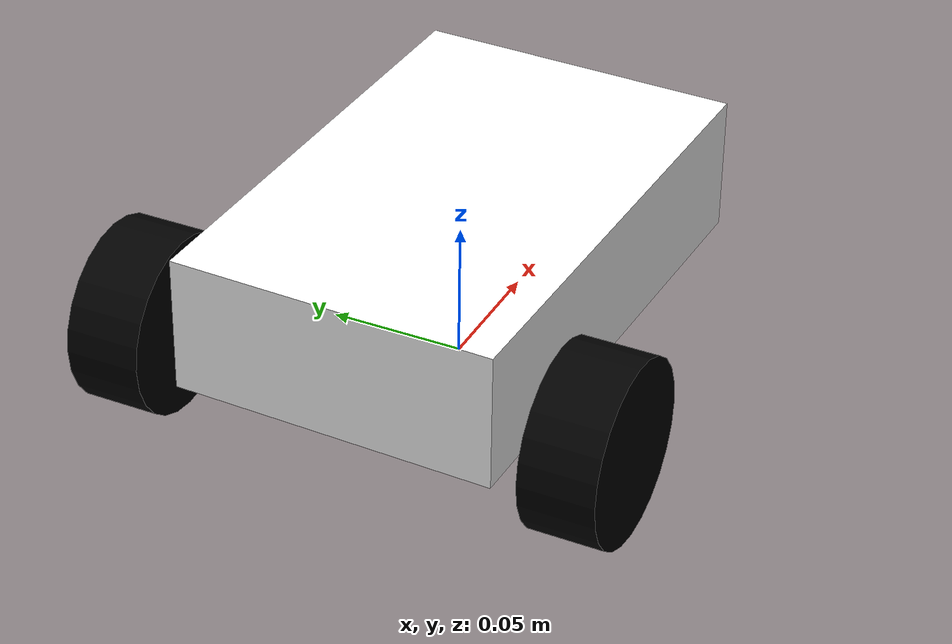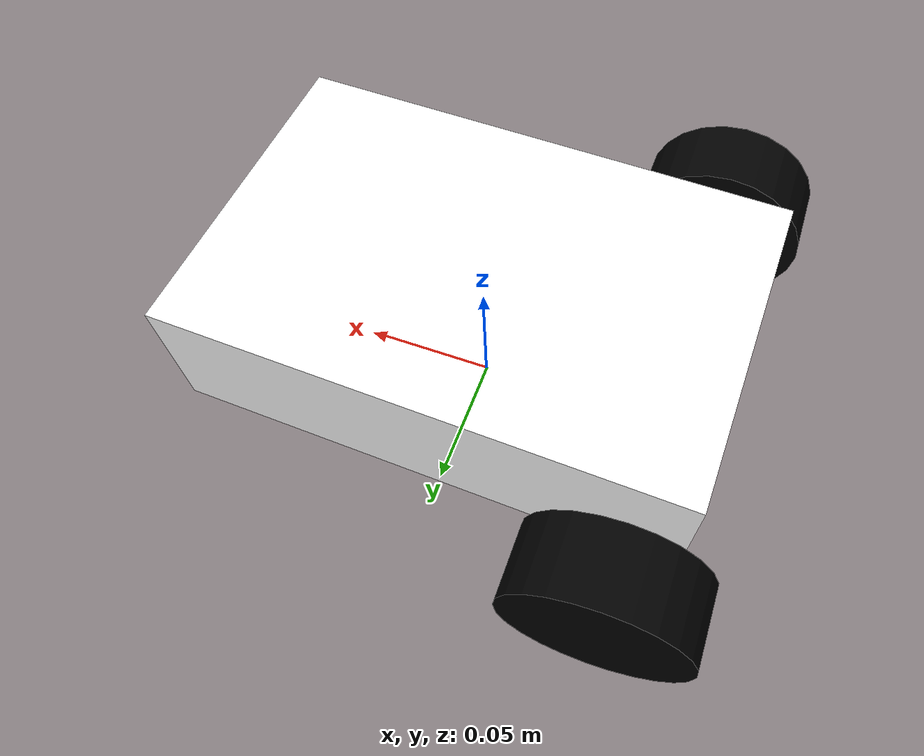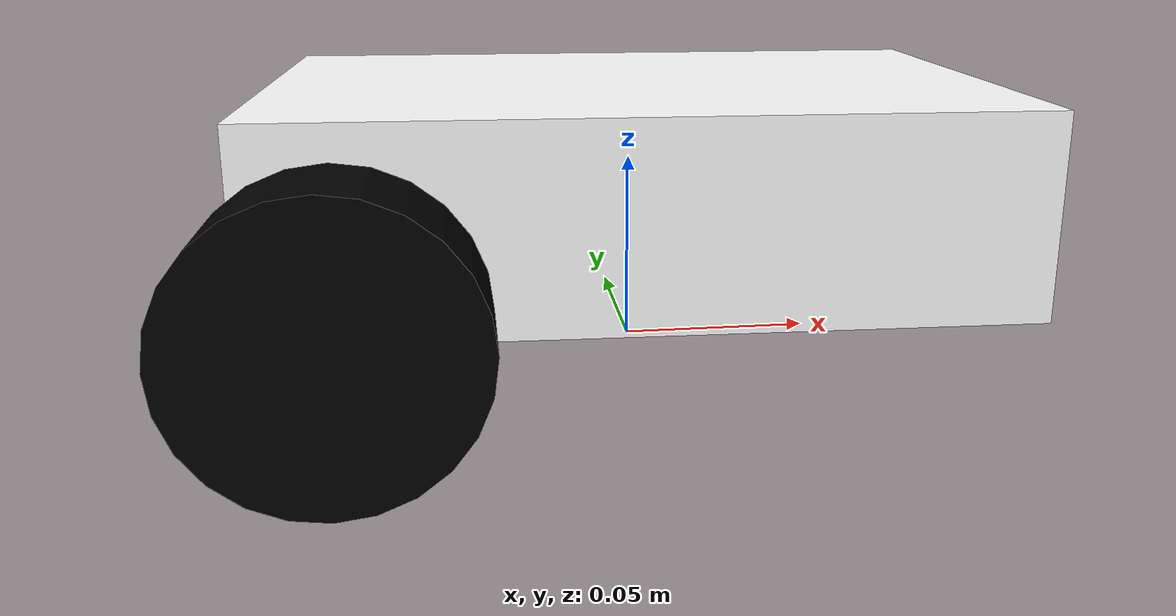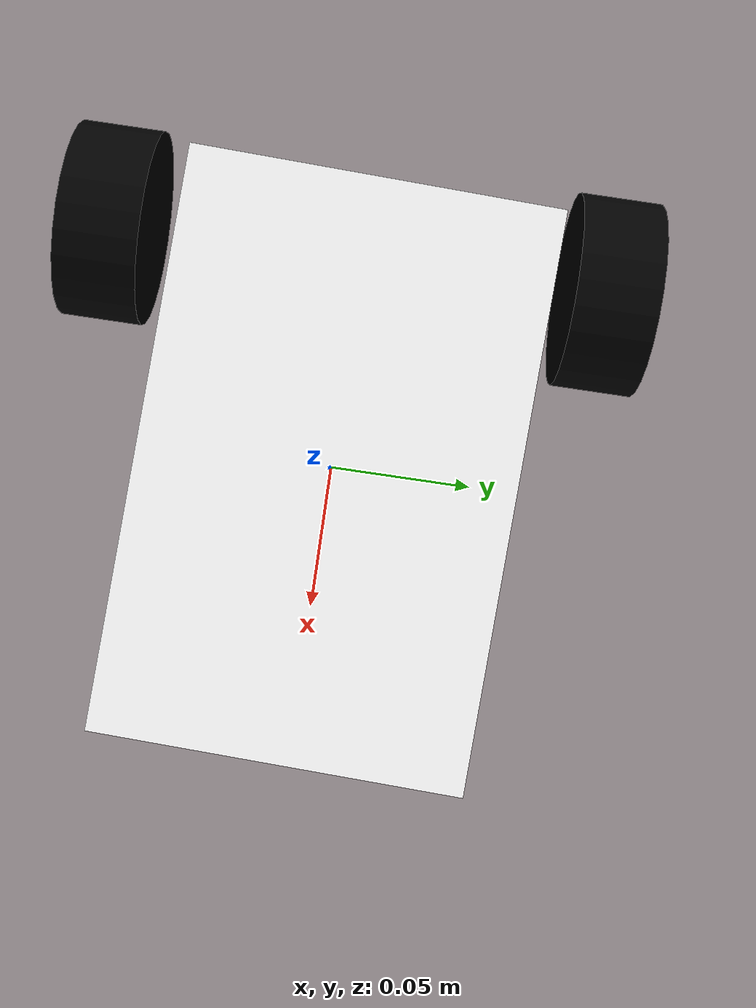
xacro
<?xml version="1.0"?>

<robot name="saturnbot_base" xmlns:xacro="http://ros.org/wiki/xacro">

  <xacro:property name="length_wheel" value="0.027" />
	<xacro:property name="radius_wheel" value="0.0325" />
	<xacro:property name="camera_link" value="0.05" />
	<xacro:macro name="default_inertial" params="mass">
               <inertial>
                       <mass value="${mass}" />
                       <inertia ixx="1.0" ixy="0.0" ixz="0.0"
                                iyy="1.0" iyz="0.0"
                                izz="1.0" />
               </inertial>
	</xacro:macro>
  <xacro:include filename="$(find saturnbot_description)/urdf/saturnbot_properties.urdf.xacro" />
	<link name="base_footprint">
   		<visual>
			<geometry>
      				<box size="0.001 0.001 0.001"/>
     			</geometry>
			<origin rpy="0 0 0" xyz="0 0 0"/>
   		</visual>
 	</link>

	<gazebo reference="base_footprint">
		<material>Gazebo/Green</material>
		<turnGravityOff>false</turnGravityOff>
	</gazebo>

	<joint name="base_footprint_joint" type="fixed">
		<origin xyz="0 0 0" />
		<parent link="base_footprint" />
		<child link="base_link" />
	</joint>

	<link name="base_link">
   		<visual>
			<geometry>
      				<box size="0.119 0.185 0.05"/>
     			</geometry>
			<origin rpy="0 0 1.54" xyz="0 0 0.046"/>
			<material name="white">
				<color rgba="1 1 1 1"/>
			</material>
   		</visual>
		<collision>
			<geometry>
       				<box size="0.119 0.185 0.05"/>
			</geometry>
		</collision>
		<xacro:default_inertial mass="1.5"/>
 	</link>

 	<link name="wheel_left">
   		<visual>
     			<geometry>
       				<cylinder length="${length_wheel}" radius="${radius_wheel}"/>
     			</geometry>
			<origin rpy="0 0 0" xyz="0 0 0"/>
   			<material name="black">
				<color rgba="0 0 0 1"/>
			</material>
		</visual>
		<collision>
			<geometry>
       				<cylinder length="${length_wheel}" radius="${radius_wheel}"/>
			</geometry>
		</collision>
		<xacro:default_inertial mass="0.1"/>
 	</link>

 	<link name="wheel_right">
   		<visual>
     			<geometry>
       				<cylinder length="${length_wheel}" radius="${radius_wheel}"/>
     			</geometry>
			<origin rpy="0 0 0" xyz="0 0 0"/>
   			<material name="black"/>
   		</visual>
		<collision>
			<geometry>
       				<cylinder length="${length_wheel}" radius="${radius_wheel}"/>
			</geometry>
		</collision>
		<xacro:default_inertial mass="0.1"/>

 	</link>

 	<link name="caster_wheel">
   		<visual>
     			<geometry>
       				<sphere radius="0.021"/>
     			</geometry>

			<origin rpy="0 0 0" xyz="0 0 0"/>
   			<material name="black"/>
   		</visual>
		<collision>
			<geometry>
       				<sphere radius="${radius_wheel}"/>
			</geometry>
		</collision>
		<xacro:default_inertial mass="0.1"/>
 	</link>

 <joint name="base_to_wheel_left" type="continuous">
   <parent link="base_link"/>
   <child link="wheel_left"/>
   <origin rpy="-1.5707 0 0" xyz="-0.071 0.083 0.0325"/>
   <axis xyz="0 0 1" />
 </joint>

 <joint name="base_to_wheel_right" type="continuous">
   <axis xyz="0 0 1" />
   <anchor xyz="0 0 0" />
   <limit effort="100" velocity="100" />
   <parent link="base_link"/>
   <child link="wheel_right"/>
   <origin rpy="-1.5707 0 0" xyz="-0.071 -0.083 0.0325"/>
</joint>

 <joint name="base_to_caster_wheel" type="continuous">
   <parent link="base_link"/>
   <axis xyz="0 0 1" />
   <child link="caster_wheel"/>
   <origin rpy="-1.5707 0 0" xyz="0.071 0 0.021"/>
 </joint>

</robot>
